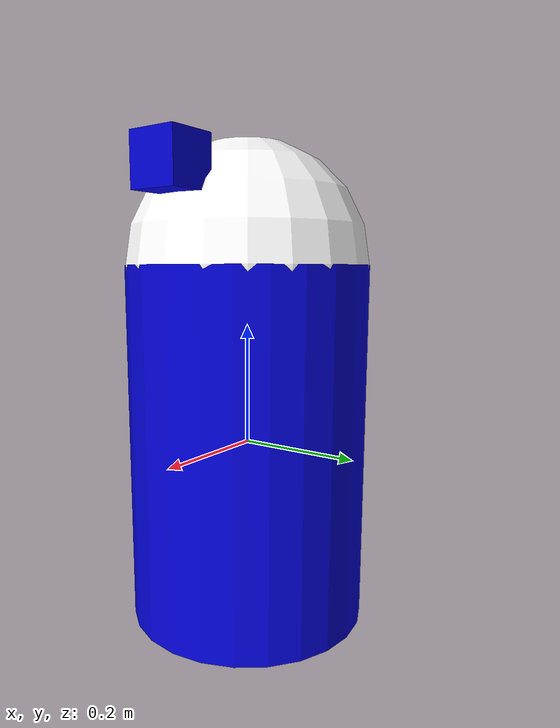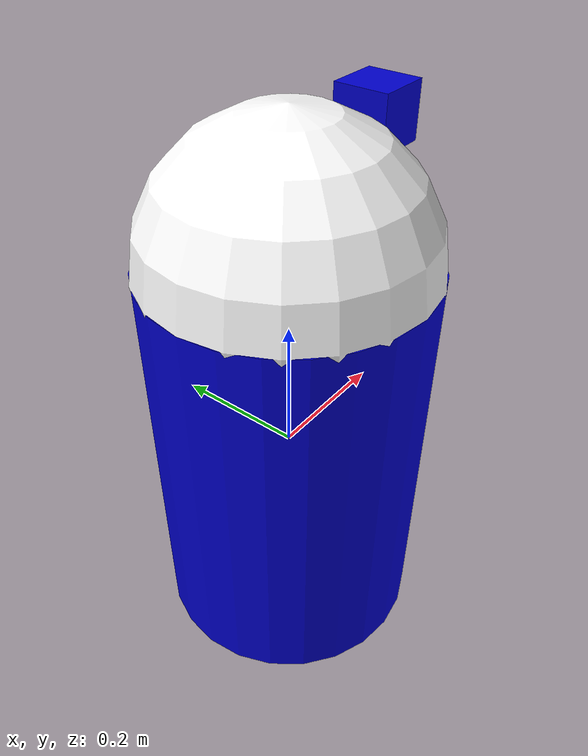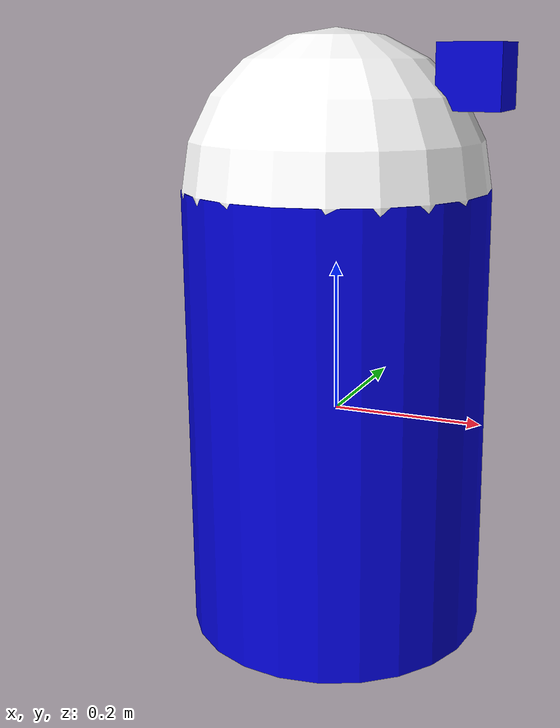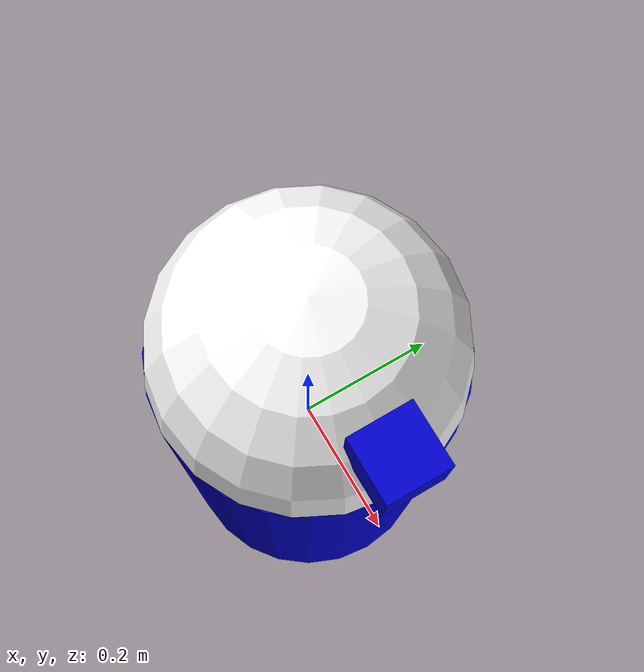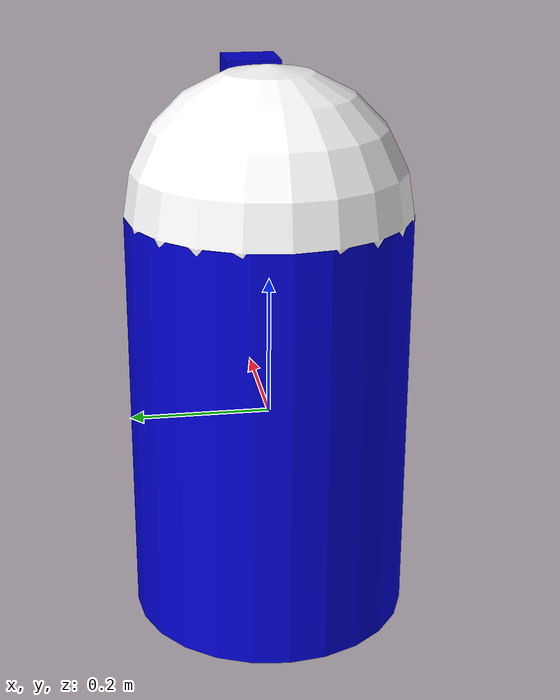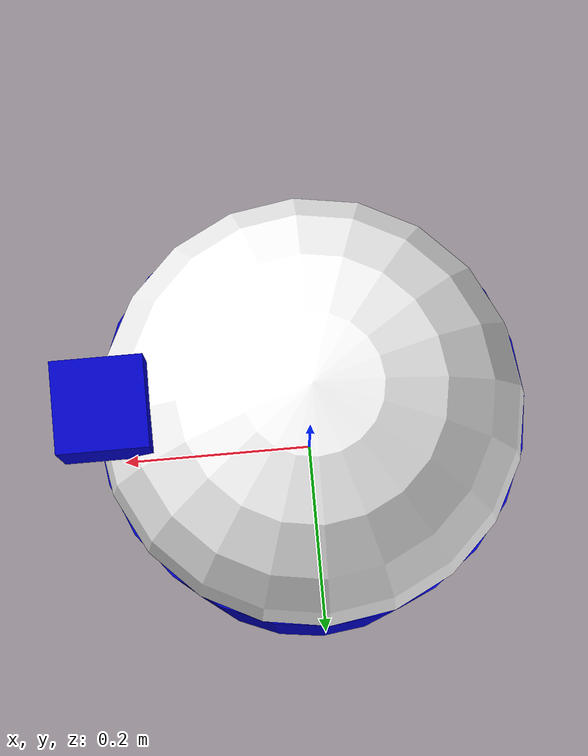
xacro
<?xml version="1.0"?>
<robot name="visual">

<material name="blue">
    <color rgba="0 0 0.8 1"/>
  </material>
  <material name="black">
    <color rgba="0 0 0 1"/>
  </material>
  <material name="white">
    <color rgba="1 1 1 1"/>
  </material>

  <link name="base_link">
    <visual>
      <geometry>
        <cylinder length="0.6" radius="0.2"/>
      </geometry>
      <material name="blue"/>
    </visual>
  </link>

  <link name="head">
    <visual>
      <geometry>
        <sphere radius="0.2"/>
      </geometry>
      <material name="white"/>
    </visual>
  </link>
  <joint name="head_swivel" type="continuous">
    <parent link="base_link"/>
    <child link="head"/>
    <axis xyz="0 0 1"/>
    <origin xyz="0 0 0.3"/>
  </joint>

  <link name="box">
    <visual>
      <geometry>
        <box size="0.08 0.08 0.08"/>
      </geometry>
      <material name="blue"/>
    </visual>
  </link>

  <joint name="tobox" type="fixed">
    <parent link="head"/>
    <child link="box"/>
    <origin xyz="0.1814 0 0.1414"/>
  </joint>
</robot>
